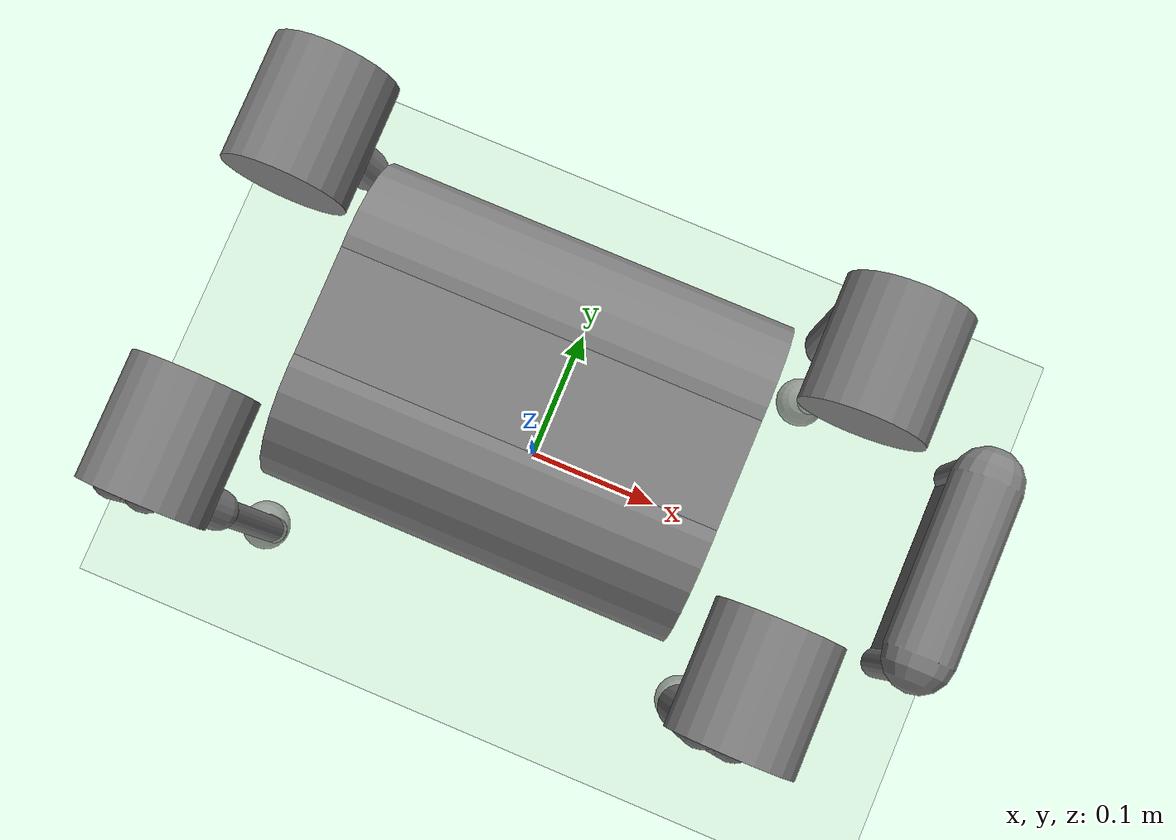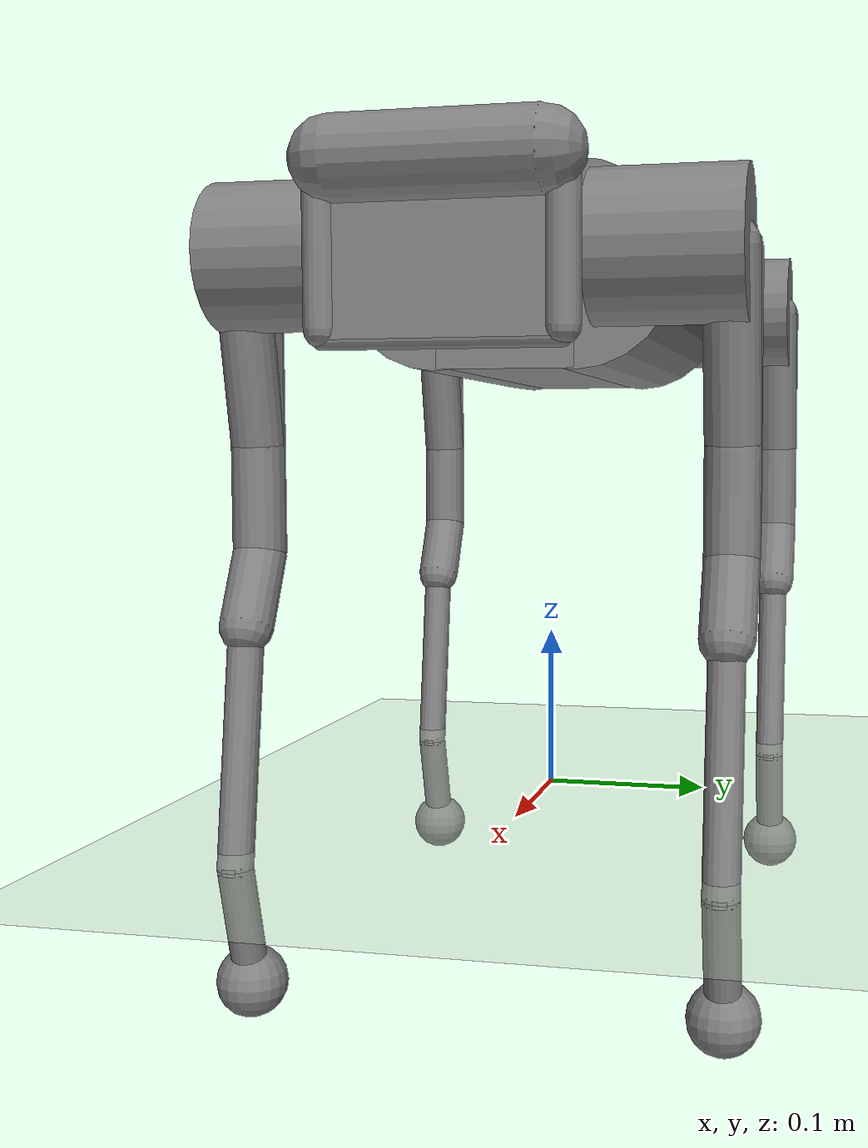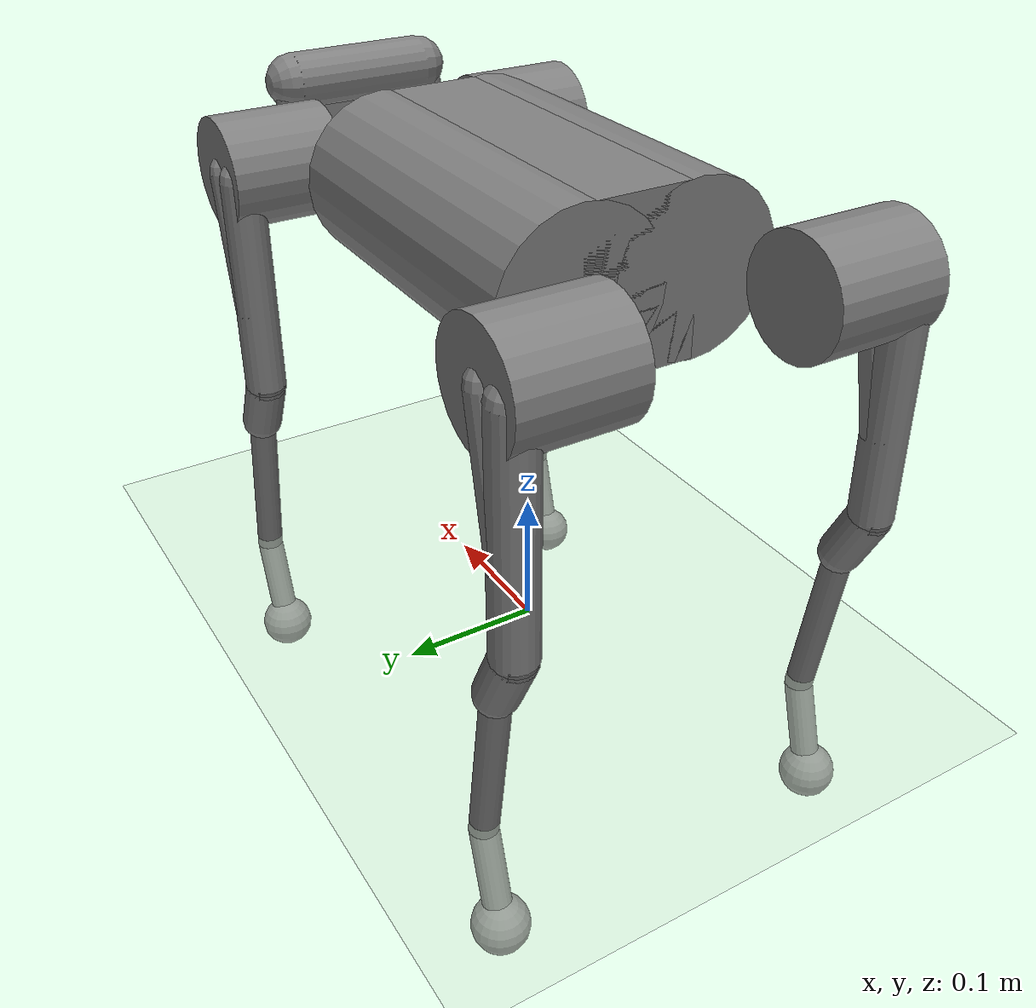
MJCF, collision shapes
<mujoco model="a1">
  <compiler angle="radian" meshdir="assets" texturedir="assets" autolimits="true"/>

  <option cone="elliptic" impratio="100"/>

  <default>
    <default class="a1">
      <geom friction="0.6" margin="0.001"/>
      <joint axis="0 1 0" damping="2" armature="0.01" frictionloss="0.2"/>
      <position kp="100" forcerange="-33.5 33.5"/>
      <default class="abduction">
        <joint axis="1 0 0" damping="1" range="-0.802851 0.802851"/>
        <position ctrlrange="-0.802851 0.802851"/>
      </default>
      <default class="hip">
        <joint range="-1.0472 4.18879"/>
        <position ctrlrange="-1.0472 4.18879"/>
      </default>
      <default class="knee">
        <joint range="-2.69653 -0.916298"/>
        <position ctrlrange="-2.69653 -0.916298"/>
      </default>
      <default class="visual">
        <geom type="mesh" contype="0" conaffinity="0" group="2" material="dark"/>
      </default>
      <default class="collision">
        <geom group="3" type="capsule"/>
        <default class="hip_left">
          <geom size="0.04 0.04" quat="1 1 0 0" type="cylinder" pos="0 0.055 0"/>
        </default>
        <default class="hip_right">
          <geom size="0.04 0.04" quat="1 1 0 0" type="cylinder" pos="0 -0.055 0"/>
        </default>
        <default class="thigh1">
          <geom size="0.015" fromto="-0.02 0 0 -0.02 0 -0.16"/>
        </default>
        <default class="thigh2">
          <geom size="0.015" fromto="0 0 0 -0.02 0 -0.1"/>
        </default>
        <default class="thigh3">
          <geom size="0.015" fromto="-0.02 0 -0.16 0 0 -0.2"/>
        </default>
        <default class="calf1">
          <geom size="0.01" fromto="0 0 0 0.02 0 -0.13"/>
        </default>
        <default class="calf2">
          <geom size="0.01" fromto="0.02 0 -0.13 0 0 -0.2"/>
        </default>
        <default class="foot">
          <geom type="sphere" size="0.02" pos="0 0 -0.2" priority="1" solimp="0.015 1 0.031"
              condim="6" friction="0.8 0.02 0.01"/>
        </default>
      </default>
    </default>
  </default>

  <asset>
    <texture name="texplane" type="2d" builtin="checker" rgb1=".2 .3 .4" rgb2=".1 0.15 0.2" width="100" height="100"></texture>
    <material name="MatPlane" reflectance="0.5" texture="texplane" texrepeat="1 1" texuniform="true"></material>
    <material name="dark" specular="0" shininess="0.25" rgba="0.2 0.2 0.2 1"/>
    <texture type="2d" name="trunk_A1" file="trunk_A1.png"/>
    <material name="carbonfibre" texture="trunk_A1" specular="0" shininess="0.25"/>

    <mesh class="a1" file="calf.obj"/>
    <mesh class="a1" file="hip.obj"/>
    <mesh class="a1" file="thigh.obj"/>
    <mesh class="a1" file="thigh_mirror.obj"/>
    <mesh class="a1" file="trunk.obj"/>
  </asset>

  <worldbody>
    <geom name="floor" pos="0 0 0" size="100 100 0.125" type="plane" material="MatPlane" condim="3" rgba="0.8 0.9 0.8 1"></geom>
    <light cutoff="100" diffuse="1 1 1" dir="-0 0 -1.3" directional="true" exponent="1" pos="0 0 1.3" specular=".1 .1 .1" castshadow="false"/>
    <light name="spotlight" mode="targetbodycom" target="trunk" pos="0 -1 2"/>
    <body name="trunk" pos="0 0 0.32" childclass="a1">
    <!--body name="trunk" pos="0 0 0.43" childclass="a1" -->
      <joint name="trunk_tx" type="slide" pos="0 0 0" axis="       1        0        0" limited="false" range="-500        500" ref="0" armature="0" damping="0" stiffness="0"></joint>
      <joint name="trunk_ty" type="slide" pos="0 0 0" axis="       0        1        0" limited="false" range="-100        200" ref="0" armature="0" damping="0" stiffness="0"></joint>
      <joint name="trunk_tz" type="slide" pos="0 0 0" axis="       0        0        1" limited="false" range="-300        300" ref="0" armature="0" damping="0" stiffness="0"></joint>
      <joint name="trunk_tilt" type="hinge" pos="0 0 0" axis="       0        0        1" limited="false" range=" -1.5708   1.5708" ref="0" armature="0" damping="0" stiffness="0"></joint>
      <joint name="trunk_list" type="hinge" pos="0 0 0" axis="       1        0        0" limited="false" range=" -1.5708   1.5708" ref="0" armature="0" damping="0" stiffness="0"></joint>
      <joint name="trunk_rotation" type="hinge" pos="0 0 0" axis="       0        1        0" limited="false" range=" -1.5708   1.5708" ref="0" armature="0" damping="0" stiffness="0"></joint>
      <inertial pos="0.0127283 0.00218554 0.000514891" quat="0.00186575 0.711506 0.000389649 0.702677" mass="4.714" diaginertia="0.0648213 0.0565803 0.0169323" />

      <geom class="visual" mesh="trunk" material="carbonfibre"/>
      <geom class="collision" size="0.125 0.04 0.057" type="box"/>
      <geom class="collision" quat="1 0 1 0" pos="0 -0.04 0" size="0.058 0.125" type="cylinder"/>
      <geom class="collision" quat="1 0 1 0" pos="0 +0.04 0" size="0.058 0.125" type="cylinder"/>
      <geom class="collision" pos="0.25 0 0" size="0.005 0.06 0.05" type="box"/>
      <geom class="collision" pos="0.25 0.06 -0.01" size="0.009 0.035"/>
      <geom class="collision" pos="0.25 -0.06 -0.01" size="0.009 0.035"/>
      <geom class="collision" pos="0.25 0 -0.05" size="0.005 0.06" quat="1 1 0 0"/>
      <geom class="collision" pos="0.255 0 0.0355" size="0.021 0.052" quat="1 1 0 0"/>
      <body name="FR_hip" pos="0.183 -0.047 0">
        <inertial pos="-0.003311 -0.000635 3.1e-05" quat="0.507528 0.506268 0.491507 0.494499" mass="0.696" diaginertia="0.000807752 0.00055293 0.000468983" />
        <joint class="abduction" name="FR_hip_joint"/>
        <geom class="visual" mesh="hip" quat="0 1 0 0"/>
        <geom class="hip_right"/>
        <body name="FR_thigh" pos="0 -0.08505 0">
          <inertial pos="-0.003237 0.022327 -0.027326" quat="0.999125 -0.00256393 -0.0409531 -0.00806091" mass="1.013" diaginertia="0.00555739 0.00513936 0.00133944" />
          <joint class="hip" name="FR_thigh_joint"/>
          <geom class="visual" mesh="thigh_mirror"/>
          <geom class="thigh1"/>
          <geom class="thigh2"/>
          <geom class="thigh3"/>
          <body name="FR_calf" pos="0 0 -0.2">
            <inertial pos="0.00472659 0 -0.131975" quat="0.706886 0.017653 0.017653 0.706886" mass="0.226" diaginertia="0.00340344 0.00339393 3.54834e-05" />
            <joint class="knee" name="FR_calf_joint"/>
            <geom class="visual" mesh="calf"/>
            <geom class="calf1"/>
            <geom class="calf2"/>
            <geom class="foot" name="FR_foot"/>
          </body>
        </body>
      </body>
      <body name="FL_hip" pos="0.183 0.047 0">
        <inertial pos="-0.003311 0.000635 3.1e-05" quat="0.494499 0.491507 0.506268 0.507528" mass="0.696" diaginertia="0.000807752 0.00055293 0.000468983" />
        <joint class="abduction" name="FL_hip_joint"/>
        <geom class="visual" mesh="hip"/>
        <geom class="hip_left"/>
        <geom class="collision" size="0.04 0.04" pos="0 0.055 0" quat="1 1 0 0" type="cylinder"/>
        <body name="FL_thigh" pos="0 0.08505 0">
          <inertial pos="-0.003237 -0.022327 -0.027326" quat="0.999125 0.00256393 -0.0409531 0.00806091" mass="1.013" diaginertia="0.00555739 0.00513936 0.00133944" />
          <joint class="hip" name="FL_thigh_joint"/>
          <geom class="visual" mesh="thigh"/>
          <geom class="thigh1"/>
          <geom class="thigh2"/>
          <geom class="thigh3"/>
          <body name="FL_calf" pos="0 0 -0.2">
            <inertial pos="0.00472659 0 -0.131975" quat="0.706886 0.017653 0.017653 0.706886" mass="0.226" diaginertia="0.00340344 0.00339393 3.54834e-05" />
            <joint class="knee" name="FL_calf_joint"/>
            <geom class="visual" mesh="calf"/>
            <geom class="calf1"/>
            <geom class="calf2"/>
            <geom class="foot"  name="FL_foot"/>
          </body>
        </body>
      </body>
      <body name="RR_hip" pos="-0.183 -0.047 0">
        <inertial pos="0.003311 -0.000635 3.1e-05" quat="0.491507 0.494499 0.507528 0.506268" mass="0.696" diaginertia="0.000807752 0.00055293 0.000468983" />
        <joint class="abduction" name="RR_hip_joint"/>
        <geom class="visual" quat="0 0 0 -1" mesh="hip"/>
        <geom class="hip_right"/>
        <body name="RR_thigh" pos="0 -0.08505 0">
          <inertial pos="-0.003237 0.022327 -0.027326" quat="0.999125 -0.00256393 -0.0409531 -0.00806091" mass="1.013" diaginertia="0.00555739 0.00513936 0.00133944" />
          <joint class="hip" name="RR_thigh_joint"/>
          <geom class="visual" mesh="thigh_mirror"/>
          <geom class="thigh1"/>
          <geom class="thigh2"/>
          <geom class="thigh3"/>
          <body name="RR_calf" pos="0 0 -0.2">
            <inertial pos="0.00472659 0 -0.131975" quat="0.706886 0.017653 0.017653 0.706886" mass="0.226" diaginertia="0.00340344 0.00339393 3.54834e-05" />
            <joint class="knee" name="RR_calf_joint"/>
            <geom class="visual" mesh="calf"/>
            <geom class="calf1"/>
            <geom class="calf2"/>
            <geom class="foot" name="RR_foot"/>
          </body>
        </body>
      </body>
      <body name="RL_hip" pos="-0.183 0.047 0">
        <inertial pos="0.003311 0.000635 3.1e-05" quat="0.506268 0.507528 0.494499 0.491507" mass="0.696" diaginertia="0.000807752 0.00055293 0.000468983" />
        <joint class="abduction" name="RL_hip_joint"/>
        <geom class="visual" quat="0 0 1 0" mesh="hip"/>
        <geom class="hip_left"/>
        <body name="RL_thigh" pos="0 0.08505 0">
          <inertial pos="-0.003237 -0.022327 -0.027326" quat="0.999125 0.00256393 -0.0409531 0.00806091" mass="1.013" diaginertia="0.00555739 0.00513936 0.00133944" />
          <joint class="hip" name="RL_thigh_joint"/>
          <geom class="visual" mesh="thigh"/>
          <geom class="thigh1"/>
          <geom class="thigh2"/>
          <geom class="thigh3"/>
          <body name="RL_calf" pos="0 0 -0.2">
            <inertial pos="0.00472659 0 -0.131975" quat="0.706886 0.017653 0.017653 0.706886" mass="0.226" diaginertia="0.00340344 0.00339393 3.54834e-05" />
            <joint class="knee" name="RL_calf_joint"/>
            <geom class="visual" mesh="calf"/>
            <geom class="calf1"/>
            <geom class="calf2"/>
            <geom class="foot" name="RL_foot"/>
          </body>
        </body>
      </body>
    </body>
  </worldbody>

  <actuator>
    <position class="abduction" name="FR_hip" joint="FR_hip_joint"/>
    <position class="hip" name="FR_thigh" joint="FR_thigh_joint"/>
    <position class="knee" name="FR_calf" joint="FR_calf_joint"/>
    <position class="abduction" name="FL_hip" joint="FL_hip_joint"/>
    <position class="hip" name="FL_thigh" joint="FL_thigh_joint"/>
    <position class="knee" name="FL_calf" joint="FL_calf_joint"/>
    <position class="abduction" name="RR_hip" joint="RR_hip_joint"/>
    <position class="hip" name="RR_thigh" joint="RR_thigh_joint"/>
    <position class="knee" name="RR_calf" joint="RR_calf_joint"/>
    <position class="abduction" name="RL_hip" joint="RL_hip_joint"/>
    <position class="hip" name="RL_thigh" joint="RL_thigh_joint"/>
    <position class="knee" name="RL_calf" joint="RL_calf_joint"/>
  </actuator>

</mujoco>
